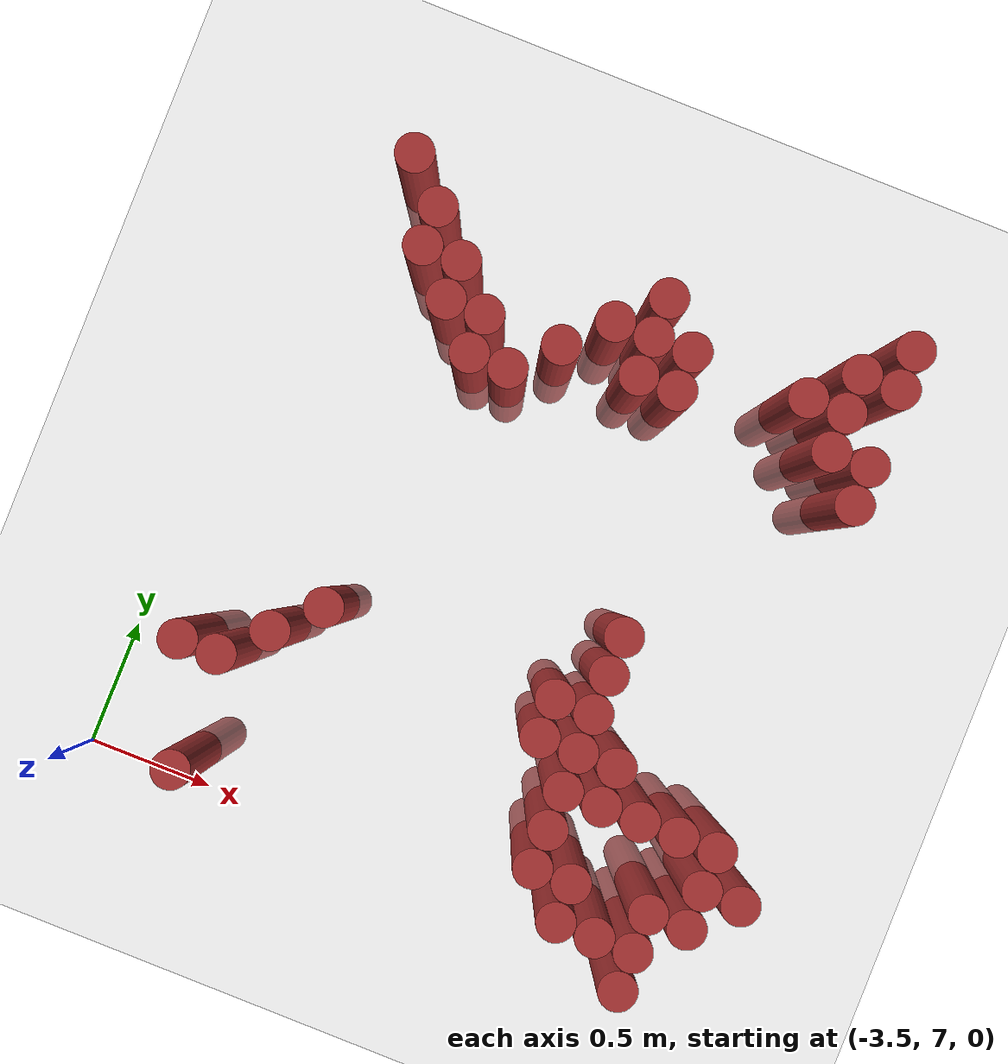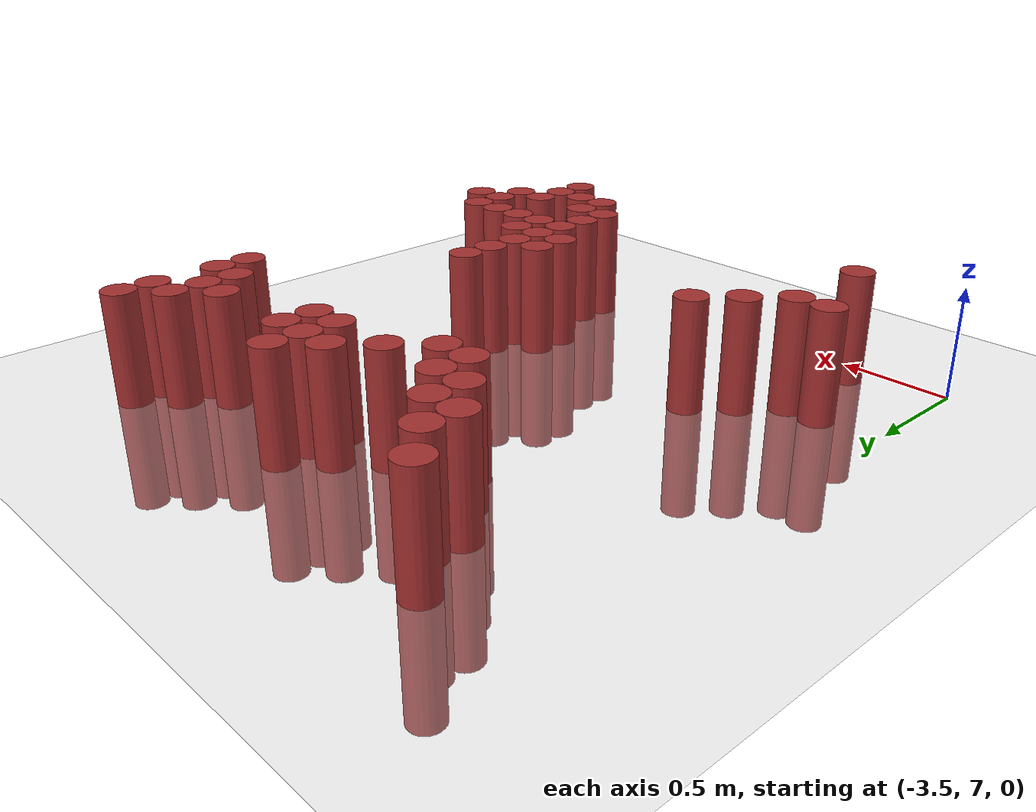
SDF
<sdf version="1.6">
 <world name="default">
  <model name="ground_plane">
   <static>1</static>
   <link name="link">
    <collision name="collision">
     <geometry><plane><normal>0 0 1</normal><size>100 100</size></plane></geometry>
     <surface><friction><ode><mu>100</mu><mu2>50</mu2></ode></friction></surface>
    </collision>
    <visual name="visual">
     <cast_shadows>0</cast_shadows>
     <geometry><plane><normal>0 0 1</normal><size>100 100</size></plane></geometry>
     <material>
      <script><uri>file://media/materials/scripts/gazebo.material</uri><name>Gazebo/Grey</name></script>
     </material>
    </visual>
   </link>
  </model>
  <model name="unit_cylinder_176">
   <static>1</static>
   <pose>-3.225000 7.575000 0.000000 0.000000 0.000000 0.000000</pose>
   <link name="link">
    <inertial>
     <mass>1</mass>
     <inertia><ixx>0.145833</ixx><ixy>0</ixy><ixz>0</ixz><iyy>0.145833</iyy><iyz>0</iyz><izz>0.125</izz></inertia>
    </inertial>
    <collision name="collision">
     <geometry><cylinder><radius>0.075000</radius><length>1</length></cylinder></geometry>
    </collision>
    <visual name="visual">
     <geometry><cylinder><radius>0.075000</radius><length>1</length></cylinder></geometry>
     <material>
      <ambient>0.648000 0.192000 0.192000 1</ambient>
      <diffuse>0.648000 0.192000 0.192000 1</diffuse>
     </material>
     <material>
      <script><name>Gazebo/Grey</name><uri>file://media/materials/scripts/gazebo.material</uri></script>
     </material>
    </visual>
   </link>
  </model>
  <model name="unit_cylinder_178">
   <static>1</static>
   <pose>-3.075000 7.125000 0.000000 0.000000 0.000000 0.000000</pose>
   <link name="link">
    <inertial>
     <mass>1</mass>
     <inertia><ixx>0.145833</ixx><ixy>0</ixy><ixz>0</ixz><iyy>0.145833</iyy><iyz>0</iyz><izz>0.125</izz></inertia>
    </inertial>
    <collision name="collision">
     <geometry><cylinder><radius>0.075000</radius><length>1</length></cylinder></geometry>
    </collision>
    <visual name="visual">
     <geometry><cylinder><radius>0.075000</radius><length>1</length></cylinder></geometry>
     <material>
      <ambient>0.648000 0.192000 0.192000 1</ambient>
      <diffuse>0.648000 0.192000 0.192000 1</diffuse>
     </material>
     <material>
      <script><name>Gazebo/Grey</name><uri>file://media/materials/scripts/gazebo.material</uri></script>
     </material>
    </visual>
   </link>
  </model>
  <model name="unit_cylinder_179">
   <static>1</static>
   <pose>-3.075000 7.575000 0.000000 0.000000 0.000000 0.000000</pose>
   <link name="link">
    <inertial>
     <mass>1</mass>
     <inertia><ixx>0.145833</ixx><ixy>0</ixy><ixz>0</ixz><iyy>0.145833</iyy><iyz>0</iyz><izz>0.125</izz></inertia>
    </inertial>
    <collision name="collision">
     <geometry><cylinder><radius>0.075000</radius><length>1</length></cylinder></geometry>
    </collision>
    <visual name="visual">
     <geometry><cylinder><radius>0.075000</radius><length>1</length></cylinder></geometry>
     <material>
      <ambient>0.648000 0.192000 0.192000 1</ambient>
      <diffuse>0.648000 0.192000 0.192000 1</diffuse>
     </material>
     <material>
      <script><name>Gazebo/Grey</name><uri>file://media/materials/scripts/gazebo.material</uri></script>
     </material>
    </visual>
   </link>
  </model>
  <model name="unit_cylinder_180">
   <static>1</static>
   <pose>-3.075000 9.525000 0.000000 0.000000 0.000000 0.000000</pose>
   <link name="link">
    <inertial>
     <mass>1</mass>
     <inertia><ixx>0.145833</ixx><ixy>0</ixy><ixz>0</ixz><iyy>0.145833</iyy><iyz>0</iyz><izz>0.125</izz></inertia>
    </inertial>
    <collision name="collision">
     <geometry><cylinder><radius>0.075000</radius><length>1</length></cylinder></geometry>
    </collision>
    <visual name="visual">
     <geometry><cylinder><radius>0.075000</radius><length>1</length></cylinder></geometry>
     <material>
      <ambient>0.648000 0.192000 0.192000 1</ambient>
      <diffuse>0.648000 0.192000 0.192000 1</diffuse>
     </material>
     <material>
      <script><name>Gazebo/Grey</name><uri>file://media/materials/scripts/gazebo.material</uri></script>
     </material>
    </visual>
   </link>
  </model>
  <model name="unit_cylinder_183">
   <static>1</static>
   <pose>-2.925000 7.725000 0.000000 0.000000 0.000000 0.000000</pose>
   <link name="link">
    <inertial>
     <mass>1</mass>
     <inertia><ixx>0.145833</ixx><ixy>0</ixy><ixz>0</ixz><iyy>0.145833</iyy><iyz>0</iyz><izz>0.125</izz></inertia>
    </inertial>
    <collision name="collision">
     <geometry><cylinder><radius>0.075000</radius><length>1</length></cylinder></geometry>
    </collision>
    <visual name="visual">
     <geometry><cylinder><radius>0.075000</radius><length>1</length></cylinder></geometry>
     <material>
      <ambient>0.648000 0.192000 0.192000 1</ambient>
      <diffuse>0.648000 0.192000 0.192000 1</diffuse>
     </material>
     <material>
      <script><name>Gazebo/Grey</name><uri>file://media/materials/scripts/gazebo.material</uri></script>
     </material>
    </visual>
   </link>
  </model>
  <model name="unit_cylinder_184">
   <static>1</static>
   <pose>-2.925000 9.225000 0.000000 0.000000 0.000000 0.000000</pose>
   <link name="link">
    <inertial>
     <mass>1</mass>
     <inertia><ixx>0.145833</ixx><ixy>0</ixy><ixz>0</ixz><iyy>0.145833</iyy><iyz>0</iyz><izz>0.125</izz></inertia>
    </inertial>
    <collision name="collision">
     <geometry><cylinder><radius>0.075000</radius><length>1</length></cylinder></geometry>
    </collision>
    <visual name="visual">
     <geometry><cylinder><radius>0.075000</radius><length>1</length></cylinder></geometry>
     <material>
      <ambient>0.648000 0.192000 0.192000 1</ambient>
      <diffuse>0.648000 0.192000 0.192000 1</diffuse>
     </material>
     <material>
      <script><name>Gazebo/Grey</name><uri>file://media/materials/scripts/gazebo.material</uri></script>
     </material>
    </visual>
   </link>
  </model>
  <model name="unit_cylinder_185">
   <static>1</static>
   <pose>-2.925000 9.375000 0.000000 0.000000 0.000000 0.000000</pose>
   <link name="link">
    <inertial>
     <mass>1</mass>
     <inertia><ixx>0.145833</ixx><ixy>0</ixy><ixz>0</ixz><iyy>0.145833</iyy><iyz>0</iyz><izz>0.125</izz></inertia>
    </inertial>
    <collision name="collision">
     <geometry><cylinder><radius>0.075000</radius><length>1</length></cylinder></geometry>
    </collision>
    <visual name="visual">
     <geometry><cylinder><radius>0.075000</radius><length>1</length></cylinder></geometry>
     <material>
      <ambient>0.648000 0.192000 0.192000 1</ambient>
      <diffuse>0.648000 0.192000 0.192000 1</diffuse>
     </material>
     <material>
      <script><name>Gazebo/Grey</name><uri>file://media/materials/scripts/gazebo.material</uri></script>
     </material>
    </visual>
   </link>
  </model>
  <model name="unit_cylinder_187">
   <static>1</static>
   <pose>-2.775000 7.875000 0.000000 0.000000 0.000000 0.000000</pose>
   <link name="link">
    <inertial>
     <mass>1</mass>
     <inertia><ixx>0.145833</ixx><ixy>0</ixy><ixz>0</ixz><iyy>0.145833</iyy><iyz>0</iyz><izz>0.125</izz></inertia>
    </inertial>
    <collision name="collision">
     <geometry><cylinder><radius>0.075000</radius><length>1</length></cylinder></geometry>
    </collision>
    <visual name="visual">
     <geometry><cylinder><radius>0.075000</radius><length>1</length></cylinder></geometry>
     <material>
      <ambient>0.648000 0.192000 0.192000 1</ambient>
      <diffuse>0.648000 0.192000 0.192000 1</diffuse>
     </material>
     <material>
      <script><name>Gazebo/Grey</name><uri>file://media/materials/scripts/gazebo.material</uri></script>
     </material>
    </visual>
   </link>
  </model>
  <model name="unit_cylinder_188">
   <static>1</static>
   <pose>-2.775000 9.075000 0.000000 0.000000 0.000000 0.000000</pose>
   <link name="link">
    <inertial>
     <mass>1</mass>
     <inertia><ixx>0.145833</ixx><ixy>0</ixy><ixz>0</ixz><iyy>0.145833</iyy><iyz>0</iyz><izz>0.125</izz></inertia>
    </inertial>
    <collision name="collision">
     <geometry><cylinder><radius>0.075000</radius><length>1</length></cylinder></geometry>
    </collision>
    <visual name="visual">
     <geometry><cylinder><radius>0.075000</radius><length>1</length></cylinder></geometry>
     <material>
      <ambient>0.648000 0.192000 0.192000 1</ambient>
      <diffuse>0.648000 0.192000 0.192000 1</diffuse>
     </material>
     <material>
      <script><name>Gazebo/Grey</name><uri>file://media/materials/scripts/gazebo.material</uri></script>
     </material>
    </visual>
   </link>
  </model>
  <model name="unit_cylinder_189">
   <static>1</static>
   <pose>-2.775000 9.225000 0.000000 0.000000 0.000000 0.000000</pose>
   <link name="link">
    <inertial>
     <mass>1</mass>
     <inertia><ixx>0.145833</ixx><ixy>0</ixy><ixz>0</ixz><iyy>0.145833</iyy><iyz>0</iyz><izz>0.125</izz></inertia>
    </inertial>
    <collision name="collision">
     <geometry><cylinder><radius>0.075000</radius><length>1</length></cylinder></geometry>
    </collision>
    <visual name="visual">
     <geometry><cylinder><radius>0.075000</radius><length>1</length></cylinder></geometry>
     <material>
      <ambient>0.648000 0.192000 0.192000 1</ambient>
      <diffuse>0.648000 0.192000 0.192000 1</diffuse>
     </material>
     <material>
      <script><name>Gazebo/Grey</name><uri>file://media/materials/scripts/gazebo.material</uri></script>
     </material>
    </visual>
   </link>
  </model>
  <model name="unit_cylinder_192">
   <static>1</static>
   <pose>-2.625000 8.925000 0.000000 0.000000 0.000000 0.000000</pose>
   <link name="link">
    <inertial>
     <mass>1</mass>
     <inertia><ixx>0.145833</ixx><ixy>0</ixy><ixz>0</ixz><iyy>0.145833</iyy><iyz>0</iyz><izz>0.125</izz></inertia>
    </inertial>
    <collision name="collision">
     <geometry><cylinder><radius>0.075000</radius><length>1</length></cylinder></geometry>
    </collision>
    <visual name="visual">
     <geometry><cylinder><radius>0.075000</radius><length>1</length></cylinder></geometry>
     <material>
      <ambient>0.648000 0.192000 0.192000 1</ambient>
      <diffuse>0.648000 0.192000 0.192000 1</diffuse>
     </material>
     <material>
      <script><name>Gazebo/Grey</name><uri>file://media/materials/scripts/gazebo.material</uri></script>
     </material>
    </visual>
   </link>
  </model>
  <model name="unit_cylinder_193">
   <static>1</static>
   <pose>-2.625000 9.075000 0.000000 0.000000 0.000000 0.000000</pose>
   <link name="link">
    <inertial>
     <mass>1</mass>
     <inertia><ixx>0.145833</ixx><ixy>0</ixy><ixz>0</ixz><iyy>0.145833</iyy><iyz>0</iyz><izz>0.125</izz></inertia>
    </inertial>
    <collision name="collision">
     <geometry><cylinder><radius>0.075000</radius><length>1</length></cylinder></geometry>
    </collision>
    <visual name="visual">
     <geometry><cylinder><radius>0.075000</radius><length>1</length></cylinder></geometry>
     <material>
      <ambient>0.648000 0.192000 0.192000 1</ambient>
      <diffuse>0.648000 0.192000 0.192000 1</diffuse>
     </material>
     <material>
      <script><name>Gazebo/Grey</name><uri>file://media/materials/scripts/gazebo.material</uri></script>
     </material>
    </visual>
   </link>
  </model>
  <model name="unit_cylinder_196">
   <static>1</static>
   <pose>-2.475000 8.925000 0.000000 0.000000 0.000000 0.000000</pose>
   <link name="link">
    <inertial>
     <mass>1</mass>
     <inertia><ixx>0.145833</ixx><ixy>0</ixy><ixz>0</ixz><iyy>0.145833</iyy><iyz>0</iyz><izz>0.125</izz></inertia>
    </inertial>
    <collision name="collision">
     <geometry><cylinder><radius>0.075000</radius><length>1</length></cylinder></geometry>
    </collision>
    <visual name="visual">
     <geometry><cylinder><radius>0.075000</radius><length>1</length></cylinder></geometry>
     <material>
      <ambient>0.648000 0.192000 0.192000 1</ambient>
      <diffuse>0.648000 0.192000 0.192000 1</diffuse>
     </material>
     <material>
      <script><name>Gazebo/Grey</name><uri>file://media/materials/scripts/gazebo.material</uri></script>
     </material>
    </visual>
   </link>
  </model>
  <model name="unit_cylinder_197">
   <static>1</static>
   <pose>-2.325000 9.075000 0.000000 0.000000 0.000000 0.000000</pose>
   <link name="link">
    <inertial>
     <mass>1</mass>
     <inertia><ixx>0.145833</ixx><ixy>0</ixy><ixz>0</ixz><iyy>0.145833</iyy><iyz>0</iyz><izz>0.125</izz></inertia>
    </inertial>
    <collision name="collision">
     <geometry><cylinder><radius>0.075000</radius><length>1</length></cylinder></geometry>
    </collision>
    <visual name="visual">
     <geometry><cylinder><radius>0.075000</radius><length>1</length></cylinder></geometry>
     <material>
      <ambient>0.648000 0.192000 0.192000 1</ambient>
      <diffuse>0.648000 0.192000 0.192000 1</diffuse>
     </material>
     <material>
      <script><name>Gazebo/Grey</name><uri>file://media/materials/scripts/gazebo.material</uri></script>
     </material>
    </visual>
   </link>
  </model>
  <model name="unit_cylinder_198">
   <static>1</static>
   <pose>-2.175000 9.225000 0.000000 0.000000 0.000000 0.000000</pose>
   <link name="link">
    <inertial>
     <mass>1</mass>
     <inertia><ixx>0.145833</ixx><ixy>0</ixy><ixz>0</ixz><iyy>0.145833</iyy><iyz>0</iyz><izz>0.125</izz></inertia>
    </inertial>
    <collision name="collision">
     <geometry><cylinder><radius>0.075000</radius><length>1</length></cylinder></geometry>
    </collision>
    <visual name="visual">
     <geometry><cylinder><radius>0.075000</radius><length>1</length></cylinder></geometry>
     <material>
      <ambient>0.648000 0.192000 0.192000 1</ambient>
      <diffuse>0.648000 0.192000 0.192000 1</diffuse>
     </material>
     <material>
      <script><name>Gazebo/Grey</name><uri>file://media/materials/scripts/gazebo.material</uri></script>
     </material>
    </visual>
   </link>
  </model>
  <model name="unit_cylinder_199">
   <static>1</static>
   <pose>-2.025000 9.075000 0.000000 0.000000 0.000000 0.000000</pose>
   <link name="link">
    <inertial>
     <mass>1</mass>
     <inertia><ixx>0.145833</ixx><ixy>0</ixy><ixz>0</ixz><iyy>0.145833</iyy><iyz>0</iyz><izz>0.125</izz></inertia>
    </inertial>
    <collision name="collision">
     <geometry><cylinder><radius>0.075000</radius><length>1</length></cylinder></geometry>
    </collision>
    <visual name="visual">
     <geometry><cylinder><radius>0.075000</radius><length>1</length></cylinder></geometry>
     <material>
      <ambient>0.648000 0.192000 0.192000 1</ambient>
      <diffuse>0.648000 0.192000 0.192000 1</diffuse>
     </material>
     <material>
      <script><name>Gazebo/Grey</name><uri>file://media/materials/scripts/gazebo.material</uri></script>
     </material>
    </visual>
   </link>
  </model>
  <model name="unit_cylinder_200">
   <static>1</static>
   <pose>-2.025000 9.225000 0.000000 0.000000 0.000000 0.000000</pose>
   <link name="link">
    <inertial>
     <mass>1</mass>
     <inertia><ixx>0.145833</ixx><ixy>0</ixy><ixz>0</ixz><iyy>0.145833</iyy><iyz>0</iyz><izz>0.125</izz></inertia>
    </inertial>
    <collision name="collision">
     <geometry><cylinder><radius>0.075000</radius><length>1</length></cylinder></geometry>
    </collision>
    <visual name="visual">
     <geometry><cylinder><radius>0.075000</radius><length>1</length></cylinder></geometry>
     <material>
      <ambient>0.648000 0.192000 0.192000 1</ambient>
      <diffuse>0.648000 0.192000 0.192000 1</diffuse>
     </material>
     <material>
      <script><name>Gazebo/Grey</name><uri>file://media/materials/scripts/gazebo.material</uri></script>
     </material>
    </visual>
   </link>
  </model>
  <model name="unit_cylinder_201">
   <static>1</static>
   <pose>-2.025000 9.375000 0.000000 0.000000 0.000000 0.000000</pose>
   <link name="link">
    <inertial>
     <mass>1</mass>
     <inertia><ixx>0.145833</ixx><ixy>0</ixy><ixz>0</ixz><iyy>0.145833</iyy><iyz>0</iyz><izz>0.125</izz></inertia>
    </inertial>
    <collision name="collision">
     <geometry><cylinder><radius>0.075000</radius><length>1</length></cylinder></geometry>
    </collision>
    <visual name="visual">
     <geometry><cylinder><radius>0.075000</radius><length>1</length></cylinder></geometry>
     <material>
      <ambient>0.648000 0.192000 0.192000 1</ambient>
      <diffuse>0.648000 0.192000 0.192000 1</diffuse>
     </material>
     <material>
      <script><name>Gazebo/Grey</name><uri>file://media/materials/scripts/gazebo.material</uri></script>
     </material>
    </visual>
   </link>
  </model>
  <model name="unit_cylinder_202">
   <static>1</static>
   <pose>-1.875000 7.725000 0.000000 0.000000 0.000000 0.000000</pose>
   <link name="link">
    <inertial>
     <mass>1</mass>
     <inertia><ixx>0.145833</ixx><ixy>0</ixy><ixz>0</ixz><iyy>0.145833</iyy><iyz>0</iyz><izz>0.125</izz></inertia>
    </inertial>
    <collision name="collision">
     <geometry><cylinder><radius>0.075000</radius><length>1</length></cylinder></geometry>
    </collision>
    <visual name="visual">
     <geometry><cylinder><radius>0.075000</radius><length>1</length></cylinder></geometry>
     <material>
      <ambient>0.648000 0.192000 0.192000 1</ambient>
      <diffuse>0.648000 0.192000 0.192000 1</diffuse>
     </material>
     <material>
      <script><name>Gazebo/Grey</name><uri>file://media/materials/scripts/gazebo.material</uri></script>
     </material>
    </visual>
   </link>
  </model>
  <model name="unit_cylinder_203">
   <static>1</static>
   <pose>-1.875000 7.875000 0.000000 0.000000 0.000000 0.000000</pose>
   <link name="link">
    <inertial>
     <mass>1</mass>
     <inertia><ixx>0.145833</ixx><ixy>0</ixy><ixz>0</ixz><iyy>0.145833</iyy><iyz>0</iyz><izz>0.125</izz></inertia>
    </inertial>
    <collision name="collision">
     <geometry><cylinder><radius>0.075000</radius><length>1</length></cylinder></geometry>
    </collision>
    <visual name="visual">
     <geometry><cylinder><radius>0.075000</radius><length>1</length></cylinder></geometry>
     <material>
      <ambient>0.648000 0.192000 0.192000 1</ambient>
      <diffuse>0.648000 0.192000 0.192000 1</diffuse>
     </material>
     <material>
      <script><name>Gazebo/Grey</name><uri>file://media/materials/scripts/gazebo.material</uri></script>
     </material>
    </visual>
   </link>
  </model>
  <model name="unit_cylinder_204">
   <static>1</static>
   <pose>-1.875000 9.075000 0.000000 0.000000 0.000000 0.000000</pose>
   <link name="link">
    <inertial>
     <mass>1</mass>
     <inertia><ixx>0.145833</ixx><ixy>0</ixy><ixz>0</ixz><iyy>0.145833</iyy><iyz>0</iyz><izz>0.125</izz></inertia>
    </inertial>
    <collision name="collision">
     <geometry><cylinder><radius>0.075000</radius><length>1</length></cylinder></geometry>
    </collision>
    <visual name="visual">
     <geometry><cylinder><radius>0.075000</radius><length>1</length></cylinder></geometry>
     <material>
      <ambient>0.648000 0.192000 0.192000 1</ambient>
      <diffuse>0.648000 0.192000 0.192000 1</diffuse>
     </material>
     <material>
      <script><name>Gazebo/Grey</name><uri>file://media/materials/scripts/gazebo.material</uri></script>
     </material>
    </visual>
   </link>
  </model>
  <model name="unit_cylinder_205">
   <static>1</static>
   <pose>-1.875000 9.225000 0.000000 0.000000 0.000000 0.000000</pose>
   <link name="link">
    <inertial>
     <mass>1</mass>
     <inertia><ixx>0.145833</ixx><ixy>0</ixy><ixz>0</ixz><iyy>0.145833</iyy><iyz>0</iyz><izz>0.125</izz></inertia>
    </inertial>
    <collision name="collision">
     <geometry><cylinder><radius>0.075000</radius><length>1</length></cylinder></geometry>
    </collision>
    <visual name="visual">
     <geometry><cylinder><radius>0.075000</radius><length>1</length></cylinder></geometry>
     <material>
      <ambient>0.648000 0.192000 0.192000 1</ambient>
      <diffuse>0.648000 0.192000 0.192000 1</diffuse>
     </material>
     <material>
      <script><name>Gazebo/Grey</name><uri>file://media/materials/scripts/gazebo.material</uri></script>
     </material>
    </visual>
   </link>
  </model>
  <model name="unit_cylinder_206">
   <static>1</static>
   <pose>-1.725000 7.275000 0.000000 0.000000 0.000000 0.000000</pose>
   <link name="link">
    <inertial>
     <mass>1</mass>
     <inertia><ixx>0.145833</ixx><ixy>0</ixy><ixz>0</ixz><iyy>0.145833</iyy><iyz>0</iyz><izz>0.125</izz></inertia>
    </inertial>
    <collision name="collision">
     <geometry><cylinder><radius>0.075000</radius><length>1</length></cylinder></geometry>
    </collision>
    <visual name="visual">
     <geometry><cylinder><radius>0.075000</radius><length>1</length></cylinder></geometry>
     <material>
      <ambient>0.648000 0.192000 0.192000 1</ambient>
      <diffuse>0.648000 0.192000 0.192000 1</diffuse>
     </material>
     <material>
      <script><name>Gazebo/Grey</name><uri>file://media/materials/scripts/gazebo.material</uri></script>
     </material>
    </visual>
   </link>
  </model>
  <model name="unit_cylinder_207">
   <static>1</static>
   <pose>-1.725000 7.425000 0.000000 0.000000 0.000000 0.000000</pose>
   <link name="link">
    <inertial>
     <mass>1</mass>
     <inertia><ixx>0.145833</ixx><ixy>0</ixy><ixz>0</ixz><iyy>0.145833</iyy><iyz>0</iyz><izz>0.125</izz></inertia>
    </inertial>
    <collision name="collision">
     <geometry><cylinder><radius>0.075000</radius><length>1</length></cylinder></geometry>
    </collision>
    <visual name="visual">
     <geometry><cylinder><radius>0.075000</radius><length>1</length></cylinder></geometry>
     <material>
      <ambient>0.648000 0.192000 0.192000 1</ambient>
      <diffuse>0.648000 0.192000 0.192000 1</diffuse>
     </material>
     <material>
      <script><name>Gazebo/Grey</name><uri>file://media/materials/scripts/gazebo.material</uri></script>
     </material>
    </visual>
   </link>
  </model>
  <model name="unit_cylinder_208">
   <static>1</static>
   <pose>-1.725000 7.575000 0.000000 0.000000 0.000000 0.000000</pose>
   <link name="link">
    <inertial>
     <mass>1</mass>
     <inertia><ixx>0.145833</ixx><ixy>0</ixy><ixz>0</ixz><iyy>0.145833</iyy><iyz>0</iyz><izz>0.125</izz></inertia>
    </inertial>
    <collision name="collision">
     <geometry><cylinder><radius>0.075000</radius><length>1</length></cylinder></geometry>
    </collision>
    <visual name="visual">
     <geometry><cylinder><radius>0.075000</radius><length>1</length></cylinder></geometry>
     <material>
      <ambient>0.648000 0.192000 0.192000 1</ambient>
      <diffuse>0.648000 0.192000 0.192000 1</diffuse>
     </material>
     <material>
      <script><name>Gazebo/Grey</name><uri>file://media/materials/scripts/gazebo.material</uri></script>
     </material>
    </visual>
   </link>
  </model>
  <model name="unit_cylinder_209">
   <static>1</static>
   <pose>-1.725000 7.725000 0.000000 0.000000 0.000000 0.000000</pose>
   <link name="link">
    <inertial>
     <mass>1</mass>
     <inertia><ixx>0.145833</ixx><ixy>0</ixy><ixz>0</ixz><iyy>0.145833</iyy><iyz>0</iyz><izz>0.125</izz></inertia>
    </inertial>
    <collision name="collision">
     <geometry><cylinder><radius>0.075000</radius><length>1</length></cylinder></geometry>
    </collision>
    <visual name="visual">
     <geometry><cylinder><radius>0.075000</radius><length>1</length></cylinder></geometry>
     <material>
      <ambient>0.648000 0.192000 0.192000 1</ambient>
      <diffuse>0.648000 0.192000 0.192000 1</diffuse>
     </material>
     <material>
      <script><name>Gazebo/Grey</name><uri>file://media/materials/scripts/gazebo.material</uri></script>
     </material>
    </visual>
   </link>
  </model>
  <model name="unit_cylinder_210">
   <static>1</static>
   <pose>-1.725000 7.875000 0.000000 0.000000 0.000000 0.000000</pose>
   <link name="link">
    <inertial>
     <mass>1</mass>
     <inertia><ixx>0.145833</ixx><ixy>0</ixy><ixz>0</ixz><iyy>0.145833</iyy><iyz>0</iyz><izz>0.125</izz></inertia>
    </inertial>
    <collision name="collision">
     <geometry><cylinder><radius>0.075000</radius><length>1</length></cylinder></geometry>
    </collision>
    <visual name="visual">
     <geometry><cylinder><radius>0.075000</radius><length>1</length></cylinder></geometry>
     <material>
      <ambient>0.648000 0.192000 0.192000 1</ambient>
      <diffuse>0.648000 0.192000 0.192000 1</diffuse>
     </material>
     <material>
      <script><name>Gazebo/Grey</name><uri>file://media/materials/scripts/gazebo.material</uri></script>
     </material>
    </visual>
   </link>
  </model>
  <model name="unit_cylinder_211">
   <static>1</static>
   <pose>-1.725000 8.025000 0.000000 0.000000 0.000000 0.000000</pose>
   <link name="link">
    <inertial>
     <mass>1</mass>
     <inertia><ixx>0.145833</ixx><ixy>0</ixy><ixz>0</ixz><iyy>0.145833</iyy><iyz>0</iyz><izz>0.125</izz></inertia>
    </inertial>
    <collision name="collision">
     <geometry><cylinder><radius>0.075000</radius><length>1</length></cylinder></geometry>
    </collision>
    <visual name="visual">
     <geometry><cylinder><radius>0.075000</radius><length>1</length></cylinder></geometry>
     <material>
      <ambient>0.648000 0.192000 0.192000 1</ambient>
      <diffuse>0.648000 0.192000 0.192000 1</diffuse>
     </material>
     <material>
      <script><name>Gazebo/Grey</name><uri>file://media/materials/scripts/gazebo.material</uri></script>
     </material>
    </visual>
   </link>
  </model>
  <model name="unit_cylinder_212">
   <static>1</static>
   <pose>-1.725000 8.175000 0.000000 0.000000 0.000000 0.000000</pose>
   <link name="link">
    <inertial>
     <mass>1</mass>
     <inertia><ixx>0.145833</ixx><ixy>0</ixy><ixz>0</ixz><iyy>0.145833</iyy><iyz>0</iyz><izz>0.125</izz></inertia>
    </inertial>
    <collision name="collision">
     <geometry><cylinder><radius>0.075000</radius><length>1</length></cylinder></geometry>
    </collision>
    <visual name="visual">
     <geometry><cylinder><radius>0.075000</radius><length>1</length></cylinder></geometry>
     <material>
      <ambient>0.648000 0.192000 0.192000 1</ambient>
      <diffuse>0.648000 0.192000 0.192000 1</diffuse>
     </material>
     <material>
      <script><name>Gazebo/Grey</name><uri>file://media/materials/scripts/gazebo.material</uri></script>
     </material>
    </visual>
   </link>
  </model>
  <model name="unit_cylinder_214">
   <static>1</static>
   <pose>-1.575000 7.125000 0.000000 0.000000 0.000000 0.000000</pose>
   <link name="link">
    <inertial>
     <mass>1</mass>
     <inertia><ixx>0.145833</ixx><ixy>0</ixy><ixz>0</ixz><iyy>0.145833</iyy><iyz>0</iyz><izz>0.125</izz></inertia>
    </inertial>
    <collision name="collision">
     <geometry><cylinder><radius>0.075000</radius><length>1</length></cylinder></geometry>
    </collision>
    <visual name="visual">
     <geometry><cylinder><radius>0.075000</radius><length>1</length></cylinder></geometry>
     <material>
      <ambient>0.648000 0.192000 0.192000 1</ambient>
      <diffuse>0.648000 0.192000 0.192000 1</diffuse>
     </material>
     <material>
      <script><name>Gazebo/Grey</name><uri>file://media/materials/scripts/gazebo.material</uri></script>
     </material>
    </visual>
   </link>
  </model>
  <model name="unit_cylinder_215">
   <static>1</static>
   <pose>-1.575000 7.275000 0.000000 0.000000 0.000000 0.000000</pose>
   <link name="link">
    <inertial>
     <mass>1</mass>
     <inertia><ixx>0.145833</ixx><ixy>0</ixy><ixz>0</ixz><iyy>0.145833</iyy><iyz>0</iyz><izz>0.125</izz></inertia>
    </inertial>
    <collision name="collision">
     <geometry><cylinder><radius>0.075000</radius><length>1</length></cylinder></geometry>
    </collision>
    <visual name="visual">
     <geometry><cylinder><radius>0.075000</radius><length>1</length></cylinder></geometry>
     <material>
      <ambient>0.648000 0.192000 0.192000 1</ambient>
      <diffuse>0.648000 0.192000 0.192000 1</diffuse>
     </material>
     <material>
      <script><name>Gazebo/Grey</name><uri>file://media/materials/scripts/gazebo.material</uri></script>
     </material>
    </visual>
   </link>
  </model>
  <model name="unit_cylinder_216">
   <static>1</static>
   <pose>-1.575000 7.575000 0.000000 0.000000 0.000000 0.000000</pose>
   <link name="link">
    <inertial>
     <mass>1</mass>
     <inertia><ixx>0.145833</ixx><ixy>0</ixy><ixz>0</ixz><iyy>0.145833</iyy><iyz>0</iyz><izz>0.125</izz></inertia>
    </inertial>
    <collision name="collision">
     <geometry><cylinder><radius>0.075000</radius><length>1</length></cylinder></geometry>
    </collision>
    <visual name="visual">
     <geometry><cylinder><radius>0.075000</radius><length>1</length></cylinder></geometry>
     <material>
      <ambient>0.648000 0.192000 0.192000 1</ambient>
      <diffuse>0.648000 0.192000 0.192000 1</diffuse>
     </material>
     <material>
      <script><name>Gazebo/Grey</name><uri>file://media/materials/scripts/gazebo.material</uri></script>
     </material>
    </visual>
   </link>
  </model>
  <model name="unit_cylinder_217">
   <static>1</static>
   <pose>-1.575000 7.725000 0.000000 0.000000 0.000000 0.000000</pose>
   <link name="link">
    <inertial>
     <mass>1</mass>
     <inertia><ixx>0.145833</ixx><ixy>0</ixy><ixz>0</ixz><iyy>0.145833</iyy><iyz>0</iyz><izz>0.125</izz></inertia>
    </inertial>
    <collision name="collision">
     <geometry><cylinder><radius>0.075000</radius><length>1</length></cylinder></geometry>
    </collision>
    <visual name="visual">
     <geometry><cylinder><radius>0.075000</radius><length>1</length></cylinder></geometry>
     <material>
      <ambient>0.648000 0.192000 0.192000 1</ambient>
      <diffuse>0.648000 0.192000 0.192000 1</diffuse>
     </material>
     <material>
      <script><name>Gazebo/Grey</name><uri>file://media/materials/scripts/gazebo.material</uri></script>
     </material>
    </visual>
   </link>
  </model>
  <model name="unit_cylinder_220">
   <static>1</static>
   <pose>-1.425000 7.125000 0.000000 0.000000 0.000000 0.000000</pose>
   <link name="link">
    <inertial>
     <mass>1</mass>
     <inertia><ixx>0.145833</ixx><ixy>0</ixy><ixz>0</ixz><iyy>0.145833</iyy><iyz>0</iyz><izz>0.125</izz></inertia>
    </inertial>
    <collision name="collision">
     <geometry><cylinder><radius>0.075000</radius><length>1</length></cylinder></geometry>
    </collision>
    <visual name="visual">
     <geometry><cylinder><radius>0.075000</radius><length>1</length></cylinder></geometry>
     <material>
      <ambient>0.648000 0.192000 0.192000 1</ambient>
      <diffuse>0.648000 0.192000 0.192000 1</diffuse>
     </material>
     <material>
      <script><name>Gazebo/Grey</name><uri>file://media/materials/scripts/gazebo.material</uri></script>
     </material>
    </visual>
   </link>
  </model>
  <model name="unit_cylinder_221">
   <static>1</static>
   <pose>-1.425000 7.575000 0.000000 0.000000 0.000000 0.000000</pose>
   <link name="link">
    <inertial>
     <mass>1</mass>
     <inertia><ixx>0.145833</ixx><ixy>0</ixy><ixz>0</ixz><iyy>0.145833</iyy><iyz>0</iyz><izz>0.125</izz></inertia>
    </inertial>
    <collision name="collision">
     <geometry><cylinder><radius>0.075000</radius><length>1</length></cylinder></geometry>
    </collision>
    <visual name="visual">
     <geometry><cylinder><radius>0.075000</radius><length>1</length></cylinder></geometry>
     <material>
      <ambient>0.648000 0.192000 0.192000 1</ambient>
      <diffuse>0.648000 0.192000 0.192000 1</diffuse>
     </material>
     <material>
      <script><name>Gazebo/Grey</name><uri>file://media/materials/scripts/gazebo.material</uri></script>
     </material>
    </visual>
   </link>
  </model>
  <model name="unit_cylinder_222">
   <static>1</static>
   <pose>-1.425000 9.225000 0.000000 0.000000 0.000000 0.000000</pose>
   <link name="link">
    <inertial>
     <mass>1</mass>
     <inertia><ixx>0.145833</ixx><ixy>0</ixy><ixz>0</ixz><iyy>0.145833</iyy><iyz>0</iyz><izz>0.125</izz></inertia>
    </inertial>
    <collision name="collision">
     <geometry><cylinder><radius>0.075000</radius><length>1</length></cylinder></geometry>
    </collision>
    <visual name="visual">
     <geometry><cylinder><radius>0.075000</radius><length>1</length></cylinder></geometry>
     <material>
      <ambient>0.648000 0.192000 0.192000 1</ambient>
      <diffuse>0.648000 0.192000 0.192000 1</diffuse>
     </material>
     <material>
      <script><name>Gazebo/Grey</name><uri>file://media/materials/scripts/gazebo.material</uri></script>
     </material>
    </visual>
   </link>
  </model>
  <model name="unit_cylinder_224">
   <static>1</static>
   <pose>-1.275000 6.975000 0.000000 0.000000 0.000000 0.000000</pose>
   <link name="link">
    <inertial>
     <mass>1</mass>
     <inertia><ixx>0.145833</ixx><ixy>0</ixy><ixz>0</ixz><iyy>0.145833</iyy><iyz>0</iyz><izz>0.125</izz></inertia>
    </inertial>
    <collision name="collision">
     <geometry><cylinder><radius>0.075000</radius><length>1</length></cylinder></geometry>
    </collision>
    <visual name="visual">
     <geometry><cylinder><radius>0.075000</radius><length>1</length></cylinder></geometry>
     <material>
      <ambient>0.648000 0.192000 0.192000 1</ambient>
      <diffuse>0.648000 0.192000 0.192000 1</diffuse>
     </material>
     <material>
      <script><name>Gazebo/Grey</name><uri>file://media/materials/scripts/gazebo.material</uri></script>
     </material>
    </visual>
   </link>
  </model>
  <model name="unit_cylinder_225">
   <static>1</static>
   <pose>-1.275000 7.125000 0.000000 0.000000 0.000000 0.000000</pose>
   <link name="link">
    <inertial>
     <mass>1</mass>
     <inertia><ixx>0.145833</ixx><ixy>0</ixy><ixz>0</ixz><iyy>0.145833</iyy><iyz>0</iyz><izz>0.125</izz></inertia>
    </inertial>
    <collision name="collision">
     <geometry><cylinder><radius>0.075000</radius><length>1</length></cylinder></geometry>
    </collision>
    <visual name="visual">
     <geometry><cylinder><radius>0.075000</radius><length>1</length></cylinder></geometry>
     <material>
      <ambient>0.648000 0.192000 0.192000 1</ambient>
      <diffuse>0.648000 0.192000 0.192000 1</diffuse>
     </material>
     <material>
      <script><name>Gazebo/Grey</name><uri>file://media/materials/scripts/gazebo.material</uri></script>
     </material>
    </visual>
   </link>
  </model>
  <model name="unit_cylinder_226">
   <static>1</static>
   <pose>-1.275000 7.275000 0.000000 0.000000 0.000000 0.000000</pose>
   <link name="link">
    <inertial>
     <mass>1</mass>
     <inertia><ixx>0.145833</ixx><ixy>0</ixy><ixz>0</ixz><iyy>0.145833</iyy><iyz>0</iyz><izz>0.125</izz></inertia>
    </inertial>
    <collision name="collision">
     <geometry><cylinder><radius>0.075000</radius><length>1</length></cylinder></geometry>
    </collision>
    <visual name="visual">
     <geometry><cylinder><radius>0.075000</radius><length>1</length></cylinder></geometry>
     <material>
      <ambient>0.648000 0.192000 0.192000 1</ambient>
      <diffuse>0.648000 0.192000 0.192000 1</diffuse>
     </material>
     <material>
      <script><name>Gazebo/Grey</name><uri>file://media/materials/scripts/gazebo.material</uri></script>
     </material>
    </visual>
   </link>
  </model>
  <model name="unit_cylinder_227">
   <static>1</static>
   <pose>-1.275000 7.575000 0.000000 0.000000 0.000000 0.000000</pose>
   <link name="link">
    <inertial>
     <mass>1</mass>
     <inertia><ixx>0.145833</ixx><ixy>0</ixy><ixz>0</ixz><iyy>0.145833</iyy><iyz>0</iyz><izz>0.125</izz></inertia>
    </inertial>
    <collision name="collision">
     <geometry><cylinder><radius>0.075000</radius><length>1</length></cylinder></geometry>
    </collision>
    <visual name="visual">
     <geometry><cylinder><radius>0.075000</radius><length>1</length></cylinder></geometry>
     <material>
      <ambient>0.648000 0.192000 0.192000 1</ambient>
      <diffuse>0.648000 0.192000 0.192000 1</diffuse>
     </material>
     <material>
      <script><name>Gazebo/Grey</name><uri>file://media/materials/scripts/gazebo.material</uri></script>
     </material>
    </visual>
   </link>
  </model>
  <model name="unit_cylinder_228">
   <static>1</static>
   <pose>-1.275000 9.075000 0.000000 0.000000 0.000000 0.000000</pose>
   <link name="link">
    <inertial>
     <mass>1</mass>
     <inertia><ixx>0.145833</ixx><ixy>0</ixy><ixz>0</ixz><iyy>0.145833</iyy><iyz>0</iyz><izz>0.125</izz></inertia>
    </inertial>
    <collision name="collision">
     <geometry><cylinder><radius>0.075000</radius><length>1</length></cylinder></geometry>
    </collision>
    <visual name="visual">
     <geometry><cylinder><radius>0.075000</radius><length>1</length></cylinder></geometry>
     <material>
      <ambient>0.648000 0.192000 0.192000 1</ambient>
      <diffuse>0.648000 0.192000 0.192000 1</diffuse>
     </material>
     <material>
      <script><name>Gazebo/Grey</name><uri>file://media/materials/scripts/gazebo.material</uri></script>
     </material>
    </visual>
   </link>
  </model>
  <model name="unit_cylinder_229">
   <static>1</static>
   <pose>-1.275000 9.225000 0.000000 0.000000 0.000000 0.000000</pose>
   <link name="link">
    <inertial>
     <mass>1</mass>
     <inertia><ixx>0.145833</ixx><ixy>0</ixy><ixz>0</ixz><iyy>0.145833</iyy><iyz>0</iyz><izz>0.125</izz></inertia>
    </inertial>
    <collision name="collision">
     <geometry><cylinder><radius>0.075000</radius><length>1</length></cylinder></geometry>
    </collision>
    <visual name="visual">
     <geometry><cylinder><radius>0.075000</radius><length>1</length></cylinder></geometry>
     <material>
      <ambient>0.648000 0.192000 0.192000 1</ambient>
      <diffuse>0.648000 0.192000 0.192000 1</diffuse>
     </material>
     <material>
      <script><name>Gazebo/Grey</name><uri>file://media/materials/scripts/gazebo.material</uri></script>
     </material>
    </visual>
   </link>
  </model>
  <model name="unit_cylinder_230">
   <static>1</static>
   <pose>-1.275000 9.375000 0.000000 0.000000 0.000000 0.000000</pose>
   <link name="link">
    <inertial>
     <mass>1</mass>
     <inertia><ixx>0.145833</ixx><ixy>0</ixy><ixz>0</ixz><iyy>0.145833</iyy><iyz>0</iyz><izz>0.125</izz></inertia>
    </inertial>
    <collision name="collision">
     <geometry><cylinder><radius>0.075000</radius><length>1</length></cylinder></geometry>
    </collision>
    <visual name="visual">
     <geometry><cylinder><radius>0.075000</radius><length>1</length></cylinder></geometry>
     <material>
      <ambient>0.648000 0.192000 0.192000 1</ambient>
      <diffuse>0.648000 0.192000 0.192000 1</diffuse>
     </material>
     <material>
      <script><name>Gazebo/Grey</name><uri>file://media/materials/scripts/gazebo.material</uri></script>
     </material>
    </visual>
   </link>
  </model>
  <model name="unit_cylinder_231">
   <static>1</static>
   <pose>-1.125000 7.275000 0.000000 0.000000 0.000000 0.000000</pose>
   <link name="link">
    <inertial>
     <mass>1</mass>
     <inertia><ixx>0.145833</ixx><ixy>0</ixy><ixz>0</ixz><iyy>0.145833</iyy><iyz>0</iyz><izz>0.125</izz></inertia>
    </inertial>
    <collision name="collision">
     <geometry><cylinder><radius>0.075000</radius><length>1</length></cylinder></geometry>
    </collision>
    <visual name="visual">
     <geometry><cylinder><radius>0.075000</radius><length>1</length></cylinder></geometry>
     <material>
      <ambient>0.648000 0.192000 0.192000 1</ambient>
      <diffuse>0.648000 0.192000 0.192000 1</diffuse>
     </material>
     <material>
      <script><name>Gazebo/Grey</name><uri>file://media/materials/scripts/gazebo.material</uri></script>
     </material>
    </visual>
   </link>
  </model>
  <model name="unit_cylinder_232">
   <static>1</static>
   <pose>-1.125000 7.425000 0.000000 0.000000 0.000000 0.000000</pose>
   <link name="link">
    <inertial>
     <mass>1</mass>
     <inertia><ixx>0.145833</ixx><ixy>0</ixy><ixz>0</ixz><iyy>0.145833</iyy><iyz>0</iyz><izz>0.125</izz></inertia>
    </inertial>
    <collision name="collision">
     <geometry><cylinder><radius>0.075000</radius><length>1</length></cylinder></geometry>
    </collision>
    <visual name="visual">
     <geometry><cylinder><radius>0.075000</radius><length>1</length></cylinder></geometry>
     <material>
      <ambient>0.648000 0.192000 0.192000 1</ambient>
      <diffuse>0.648000 0.192000 0.192000 1</diffuse>
     </material>
     <material>
      <script><name>Gazebo/Grey</name><uri>file://media/materials/scripts/gazebo.material</uri></script>
     </material>
    </visual>
   </link>
  </model>
  <model name="unit_cylinder_233">
   <static>1</static>
   <pose>-1.125000 7.575000 0.000000 0.000000 0.000000 0.000000</pose>
   <link name="link">
    <inertial>
     <mass>1</mass>
     <inertia><ixx>0.145833</ixx><ixy>0</ixy><ixz>0</ixz><iyy>0.145833</iyy><iyz>0</iyz><izz>0.125</izz></inertia>
    </inertial>
    <collision name="collision">
     <geometry><cylinder><radius>0.075000</radius><length>1</length></cylinder></geometry>
    </collision>
    <visual name="visual">
     <geometry><cylinder><radius>0.075000</radius><length>1</length></cylinder></geometry>
     <material>
      <ambient>0.648000 0.192000 0.192000 1</ambient>
      <diffuse>0.648000 0.192000 0.192000 1</diffuse>
     </material>
     <material>
      <script><name>Gazebo/Grey</name><uri>file://media/materials/scripts/gazebo.material</uri></script>
     </material>
    </visual>
   </link>
  </model>
  <model name="unit_cylinder_234">
   <static>1</static>
   <pose>-1.125000 8.925000 0.000000 0.000000 0.000000 0.000000</pose>
   <link name="link">
    <inertial>
     <mass>1</mass>
     <inertia><ixx>0.145833</ixx><ixy>0</ixy><ixz>0</ixz><iyy>0.145833</iyy><iyz>0</iyz><izz>0.125</izz></inertia>
    </inertial>
    <collision name="collision">
     <geometry><cylinder><radius>0.075000</radius><length>1</length></cylinder></geometry>
    </collision>
    <visual name="visual">
     <geometry><cylinder><radius>0.075000</radius><length>1</length></cylinder></geometry>
     <material>
      <ambient>0.648000 0.192000 0.192000 1</ambient>
      <diffuse>0.648000 0.192000 0.192000 1</diffuse>
     </material>
     <material>
      <script><name>Gazebo/Grey</name><uri>file://media/materials/scripts/gazebo.material</uri></script>
     </material>
    </visual>
   </link>
  </model>
  <model name="unit_cylinder_235">
   <static>1</static>
   <pose>-1.125000 9.075000 0.000000 0.000000 0.000000 0.000000</pose>
   <link name="link">
    <inertial>
     <mass>1</mass>
     <inertia><ixx>0.145833</ixx><ixy>0</ixy><ixz>0</ixz><iyy>0.145833</iyy><iyz>0</iyz><izz>0.125</izz></inertia>
    </inertial>
    <collision name="collision">
     <geometry><cylinder><radius>0.075000</radius><length>1</length></cylinder></geometry>
    </collision>
    <visual name="visual">
     <geometry><cylinder><radius>0.075000</radius><length>1</length></cylinder></geometry>
     <material>
      <ambient>0.648000 0.192000 0.192000 1</ambient>
      <diffuse>0.648000 0.192000 0.192000 1</diffuse>
     </material>
     <material>
      <script><name>Gazebo/Grey</name><uri>file://media/materials/scripts/gazebo.material</uri></script>
     </material>
    </visual>
   </link>
  </model>
  <model name="unit_cylinder_236">
   <static>1</static>
   <pose>-1.125000 9.375000 0.000000 0.000000 0.000000 0.000000</pose>
   <link name="link">
    <inertial>
     <mass>1</mass>
     <inertia><ixx>0.145833</ixx><ixy>0</ixy><ixz>0</ixz><iyy>0.145833</iyy><iyz>0</iyz><izz>0.125</izz></inertia>
    </inertial>
    <collision name="collision">
     <geometry><cylinder><radius>0.075000</radius><length>1</length></cylinder></geometry>
    </collision>
    <visual name="visual">
     <geometry><cylinder><radius>0.075000</radius><length>1</length></cylinder></geometry>
     <material>
      <ambient>0.648000 0.192000 0.192000 1</ambient>
      <diffuse>0.648000 0.192000 0.192000 1</diffuse>
     </material>
     <material>
      <script><name>Gazebo/Grey</name><uri>file://media/materials/scripts/gazebo.material</uri></script>
     </material>
    </visual>
   </link>
  </model>
  <model name="unit_cylinder_237">
   <static>1</static>
   <pose>-1.125000 9.525000 0.000000 0.000000 0.000000 0.000000</pose>
   <link name="link">
    <inertial>
     <mass>1</mass>
     <inertia><ixx>0.145833</ixx><ixy>0</ixy><ixz>0</ixz><iyy>0.145833</iyy><iyz>0</iyz><izz>0.125</izz></inertia>
    </inertial>
    <collision name="collision">
     <geometry><cylinder><radius>0.075000</radius><length>1</length></cylinder></geometry>
    </collision>
    <visual name="visual">
     <geometry><cylinder><radius>0.075000</radius><length>1</length></cylinder></geometry>
     <material>
      <ambient>0.648000 0.192000 0.192000 1</ambient>
      <diffuse>0.648000 0.192000 0.192000 1</diffuse>
     </material>
     <material>
      <script><name>Gazebo/Grey</name><uri>file://media/materials/scripts/gazebo.material</uri></script>
     </material>
    </visual>
   </link>
  </model>
  <model name="unit_cylinder_238">
   <static>1</static>
   <pose>-0.975000 7.425000 0.000000 0.000000 0.000000 0.000000</pose>
   <link name="link">
    <inertial>
     <mass>1</mass>
     <inertia><ixx>0.145833</ixx><ixy>0</ixy><ixz>0</ixz><iyy>0.145833</iyy><iyz>0</iyz><izz>0.125</izz></inertia>
    </inertial>
    <collision name="collision">
     <geometry><cylinder><radius>0.075000</radius><length>1</length></cylinder></geometry>
    </collision>
    <visual name="visual">
     <geometry><cylinder><radius>0.075000</radius><length>1</length></cylinder></geometry>
     <material>
      <ambient>0.648000 0.192000 0.192000 1</ambient>
      <diffuse>0.648000 0.192000 0.192000 1</diffuse>
     </material>
     <material>
      <script><name>Gazebo/Grey</name><uri>file://media/materials/scripts/gazebo.material</uri></script>
     </material>
    </visual>
   </link>
  </model>
 </world>
</sdf>
